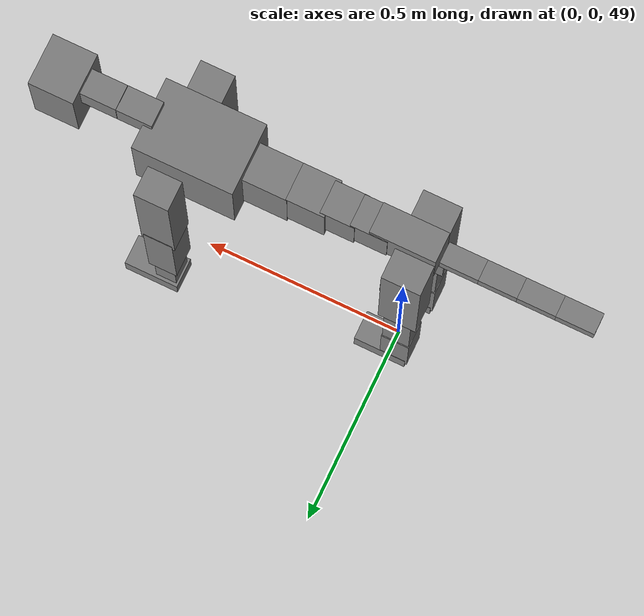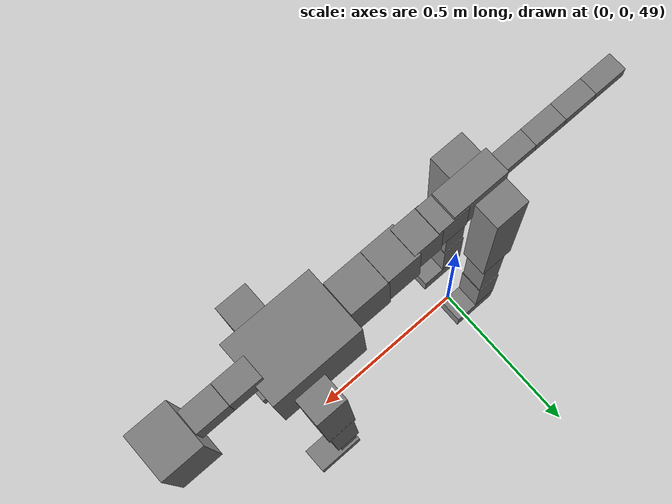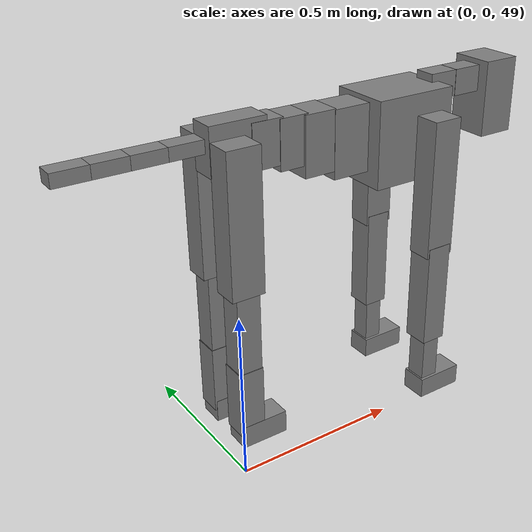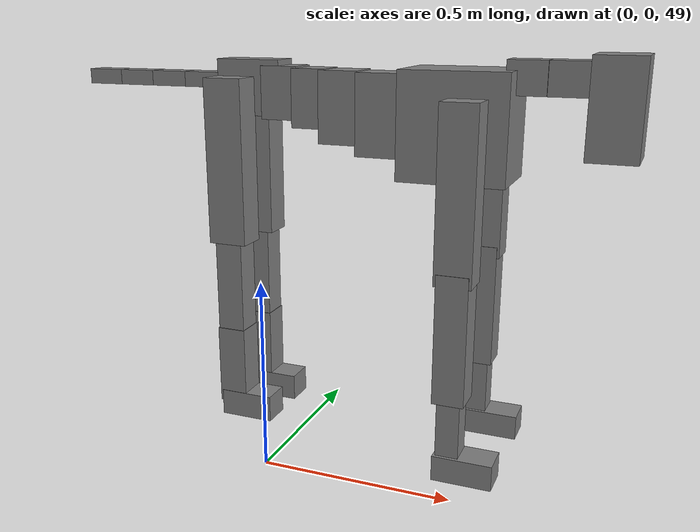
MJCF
<mujoco model="dog">

    <default>
        <joint armature="0.02" stiffness="1" damping="0.2" limited="true" />
        <geom condim="3" friction="1 0.05 0.05" margin="0.01" />
        <motor ctrllimited="true" ctrlrange="-1.0 1.0" forcelimited="true" gear="50" />
    </default>

    <compiler inertiafromgeom="true" angle="radian" />

    <option timestep="0.016" iterations="50" tolerance="1e-10" solver="Newton" jacobian="dense" cone="pyramidal" />

    <size nconmax="20000" njmax="60000" nstack="5000000" />
    <visual>
        <map force="0.1" zfar="30" />
        <rgba haze="0.15 0.25 0.35 1" />
        <quality shadowsize="2048" />
        <global offwidth="800" offheight="800" />
    </visual>

    <asset>
        <texture type="skybox" builtin="gradient" rgb1="0.3 0.5 0.7" rgb2="0 0 0" width="512" height="512" />
        <texture name="texplane" type="2d" builtin="checker" rgb1=".2 .3 .4" rgb2=".1 0.15 0.2" width="512" height="512" mark="cross" markrgb=".8 .8 .8" />
        <texture name="texgeom" type="cube" builtin="flat" mark="cross" width="127" height="1278" rgb1="0.8 0.6 0.4" rgb2="0.8 0.6 0.4" markrgb="1 1 1" random="0.01" />

        <material name="matplane" reflectance="0.3" texture="texplane" texrepeat="1 1" texuniform="true" />
        <material name="matgeom" texture="texgeom" texuniform="true" rgba="0.8 0.6 .4 1" />
    </asset>

    <worldbody>
        <geom name="floor" pos="0 0 0" size="0 0 .25" type="plane" material="matplane" condim="3" />

        <light directional="false" diffuse=".2 .2 .2" specular="0 0 0" pos="0 0 5" dir="0 0 -1" castshadow="false" />
        <light mode="targetbodycom" target="torso" directional="false" diffuse=".8 .8 .8" specular="0.3 0.3 0.3" pos="0 0 4.0" dir="0 0 -1" />

        <body name="root" pos="0 0 50">
            <freejoint name="root_1" />
            <geom type="box" pos="0 0 -0.02" size="0.0774  0.0358  0.063" density="2030" />

            <body name="spine1" pos="0.054 0 0">
                <joint name="spine1_y" axis="0 1 0" range="0 0.7" limited="true" />
                <geom type="box" pos="0.02375 0 -0.03" size="0.04375  0.0375  0.05985" density="2030" />

                <body name="spine2" pos="0.0612 0 0">
                    <joint name="spine2_y" axis="0 1 0" range="-0.15 0.15" limited="true" />
                    <geom type="box" pos="0.03555  0  -0.04" size="0.04055  0.039  0.06615" density="2030" />

                    <body name="spine3" pos="0.0730 0 0">
                        <joint name="spine3_y" axis="0 1 0" range="-0.15 0.15" limited="true" />
                        <geom type="box" pos="0.03555  0  -0.057" size="0.04555  0.0445  0.081" density="2030" />

                        <body name="spine4" pos="0.0780 0 0">
                            <joint name="spine4_y" axis="0 1 0" range="-0.15 0.15" limited="true" />
                            <geom type="box" pos="0.05265  0  -0.07" size="0.05265  0.045  0.09135" density="2030" />

                            <body name="torso" pos="0.1082 0 0">
                                <joint name="torso_y" axis="0 1 0" range="-0.15 0.15" limited="true" />
                                <geom type="box" pos="0.11925  0  -0.085" size="0.11925  0.085  0.11745" density="2030" />

                                <body name="neck1" pos="0.2160  0   0.0180">
                                    <joint name="neck1_y" axis="0 1 0" range="-1.2  -1" limited="true" />
                                    <geom type="box" pos="0.0423  0  0" size="0.0423  0.03  0.036" density="2325" />

                                    <body name="neck2" pos="0.0853  0  0">
                                        <joint name="neck2_y" axis="0 1 0" range="0.1  0" limited="true" />
                                        <geom type="box" pos="0.0423  0  0" size="0.0423  0.03  0.036" density="2325" />

                                        <body name="head" pos="0.0853  0  0">
                                            <joint name="head_y" axis="0 1 0" range="-0.3  -0.2" limited="true" />
                                            <geom type="box" pos="0.0531  0  -0.055" size="0.0531  0.06  0.1044" density="4030" />

                                        </body>
                                    </body>
                                </body>

                                <body name="front_shoulder" pos="0.156  0   -0.0480">
                                    <joint name="front_shoulder_y" axis="0 1 0" range="-1 1.5" limited="true" />
                                    <geom type="box" pos="0 0.13 -0.1633" size="0.0412  0.0352  0.1899" density="1158" />
                                    <geom type="box" pos="0 -0.13 -0.1633" size="0.0412  0.0352  0.1899" density="1158" />

                                    <body name="front_elbow" pos="0  0  -0.3265">
                                        <joint name="front_elbow_y" axis="0 1 0" range="-2 0" limited="true" />
                                        <geom type="box" pos="0 0.13 -0.1462" size="0.0356  0.0364  0.1462" density="1081" />
                                        <geom type="box" pos="0 -0.13 -0.1462" size="0.0356  0.0364  0.1462" density="1081" />

                                        <body name="front_wrist" pos="0  0  -0.2924">
                                            <joint name="front_wrist_y" axis="0 1 0" range="-0.2 0" limited="true" />
                                            <geom type="box" pos="0 0.13 -0.0706" size="0.0260  0.0289  0.0838" density="1664" />
                                            <geom type="box" pos="0 -0.13 -0.0706" size="0.0260  0.0289  0.0838" density="1664" />

                                            <body name="front_finger_end" pos="0  0  -0.1412">
                                                <joint name="front_finger_y" axis="0 1 0" range="-0.4 1" limited="true" />
                                                <geom type="box" pos="0.0369  0.13  -0.0142" size="0.0677  0.0369  0.0292" density="1515" />
                                                <geom type="box" pos="0.0369  -0.13  -0.0142" size="0.0677  0.0369  0.0292" density="1515" />

                                            </body>

                                        </body>
                                    </body>
                                </body>

                            </body>
                        </body>
                    </body>
                </body>
            </body>

            <body name="back_hip" pos="-0.03 0 -0.018">
                <joint name="back_hip_y" axis="0 1 0" range="-1.5 0.3" limited="true" />
                <geom type="box" pos="0 0.07 -0.1681" size="0.0460  0.0361  0.1909" density="1154" />
                <geom type="box" pos="0 -0.07 -0.1681" size="0.0460  0.0361  0.1909" density="1154" />

                <body name="back_knee" pos="0  0  -0.3362">
                    <joint name="back_knee_y" axis="0 1 0" range="0 2.8" limited="true" />
                    <geom type="box" pos="0 0.07 -0.1237" size="0.0328  0.0323  0.1392" density="1227" />
                    <geom type="box" pos="0 -0.07 -0.1237" size="0.0328  0.0323  0.1392" density="1227" />

                    <body name="back_ankle" pos="0  0  -0.2473">
                        <joint name="back_ankle_y" axis="0 1 0" range="-2.2 0" limited="true" />
                        <geom type="box" pos="0 0.07 -0.0838" size="0.0346  0.0346  0.0951" density="1284" />
                        <geom type="box" pos="0 -0.07 -0.0838" size="0.0346  0.0346  0.0951" density="1284" />

                        <body name="back_toe_end" pos="0  0  -0.1676">
                            <joint name="back_toe_y" axis="0 1 0" range="-0.4 1" limited="true" />
                            <geom type="box" pos="0.0353  0.07  -0.0165" size="0.0648  0.0353  0.0315" density="1515" />
                            <geom type="box" pos="0.0353  -0.07  -0.0165" size="0.0648  0.0353  0.0315" density="1515" />

                        </body>
                    </body>
                </body>
            </body>

            <body name="tail1" pos="-0.074 0 -0.006">
                <joint name="tail1_y" axis="0 1 0" range="-0.2 0.2" limited="true" />
                <geom type="box" pos="-0.0536  0  0" size="0.045  0.025  0.0175" density="1587" />

                <body name="tail2" pos="-0.09 0 0">
                    <joint name="tail2_y" axis="0 1 0" range="-0.2 0.2" limited="true" />
                    <geom type="box" pos="-0.0536  0  0" size="0.045  0.025  0.0175" density="1587" />

                    <body name="tail3" pos="-0.09 0 0">
                        <joint name="tail3_y" axis="0 1 0" range="-0.2 0.2" limited="true" />
                        <geom type="box" pos="-0.0536  0  0" size="0.045  0.025  0.0175" density="1587" />

                        <body name="tail4" pos="-0.09 0 0">
                            <joint name="tail4_y" axis="0 1 0" range="-0.2 0.2" limited="true" />
                            <geom type="box" pos="-0.0536  0  0" size="0.045  0.025  0.0175" density="1587" />

                        </body>
                    </body>
                </body>
            </body>
        </body>
    </worldbody>

    <actuator>
        <motor joint="spine1_y" forcerange="-150 150     " />
        <motor joint="spine2_y" forcerange="-150 150     " />
        <motor joint="spine3_y" forcerange="-150 150     " />
        <motor joint="spine4_y" forcerange="-150 150     " />
        <motor joint="torso_y" forcerange="-150 150     " />
        <motor joint="neck1_y" forcerange="-100 100       " />
        <motor joint="neck2_y" forcerange="-100 100       " />
        <motor joint="head_y" forcerange="-150 150       " />
        <motor joint="front_shoulder_y" forcerange="-151.22 183.60" />
        <motor joint="front_elbow_y" forcerange="-167.13 197.44" />
        <motor joint="front_wrist_y" forcerange="-131.11 100.14" />
        <motor joint="front_finger_y" forcerange="-71.16 85.89" />
        <motor joint="back_hip_y" forcerange="-320.97 360.04" />
        <motor joint="back_knee_y" forcerange="-311.57 358.87" />
        <motor joint="back_angle_y" forcerange="-207.71 246.28" />
        <motor joint="back_toe_y" forcerange="-121.72 81.01" />
        <motor joint="tail1_y" forcerange="-50 50     " />
        <motor joint="tail2_y" forcerange="-50 50     " />
        <motor joint="tail3_y" forcerange="-50 50     " />
        <motor joint="tail4_y" forcerange="-50 50     " />
    </actuator>
</mujoco>
